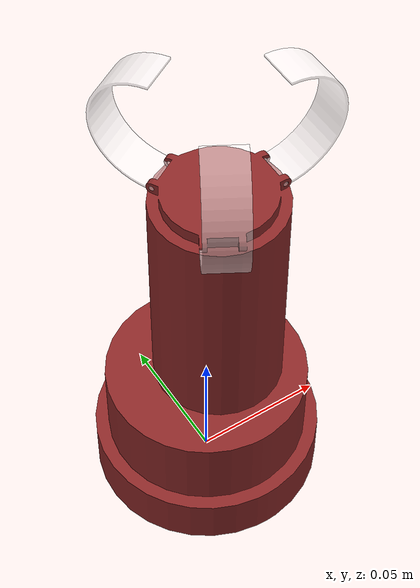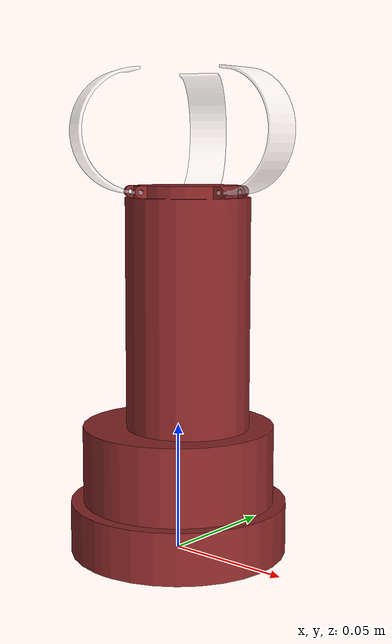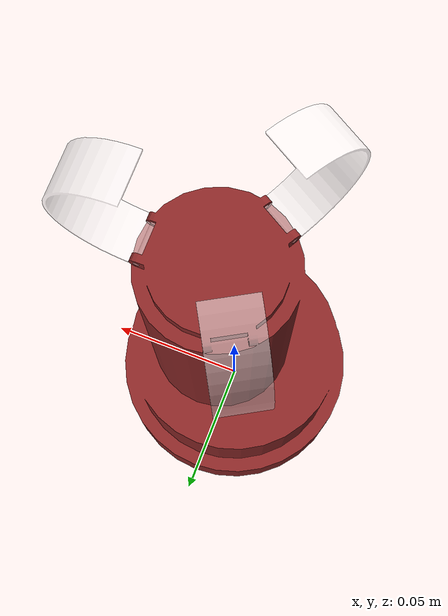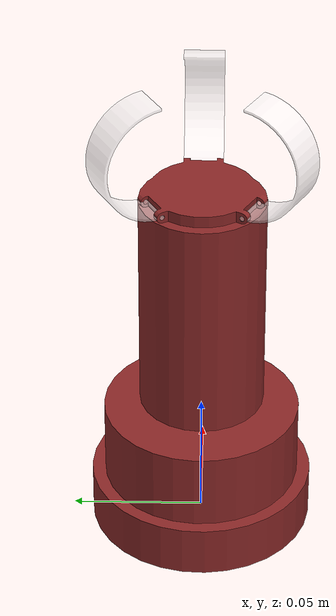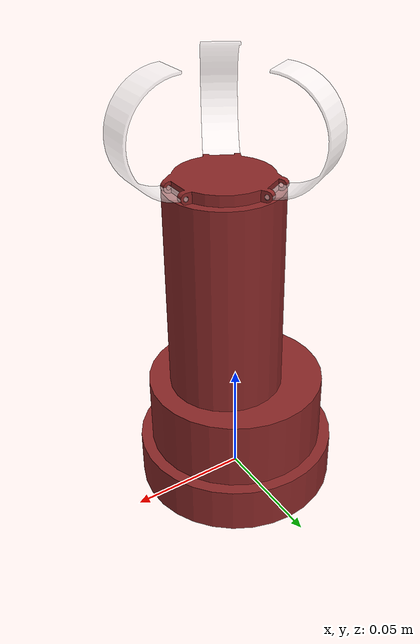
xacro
<?xml version="1.0"?>
<robot xmlns:xacro="http://ros.org/wiki/xacro" name="kirigami_gripper">
  <xacro:include filename="$(find lite6)/urdf/kirigami_gripper.transmission.xacro" />
  <xacro:include filename="$(find lite6)/urdf/kirigami_gripper_test.gazebo.xacro" />

    <link name="base_link">
    </link>
    <joint name="base_fixed_joint" type="fixed">
        <parent link="base_link"/>
        <child link="kirigami_gripper_base"/>
        <origin xyz="0.000 0.000 0.000" rpy="0 0 0"/>
    </joint>
  <link
    name="kirigami_gripper_base">
    <inertial>
      <origin
        xyz="0.00276 0.0 0.046"
        rpy="0 0 0" />
      <mass
        value="0.295" />
      <inertia
        ixx="0.00081394"
        ixy="5.0000E-08"
        ixz="2.9410E-07"
        iyy="0.00081881"
        iyz="1.1000E-07"
        izz="0.00022262" />
    </inertial>
    <visual>
      <origin
        xyz="0 0 0"
        rpy="0 0 0" />
      <geometry>
        <mesh
          filename="package://lite6/meshes/visual/kirigami_gripper_base.STL" />
      </geometry>
      <material name="Kirigami_Red">
        <color rgba="0.549 0.157 0.157 1.0"/>
      </material>
    </visual>
    <collision>
      <origin
        xyz="0 0 0"
        rpy="0 0 0" />
      <geometry>
        <mesh
          filename="package://lite6/meshes/collision/kirigami_gripper_base_collision.STL" />
      </geometry>
    </collision>
  </link>

<!-- finger_1 -->
  <joint name="finger1_joint" type="revolute">
    <origin
      xyz="0.026 -0.0075 0.141"
      rpy="-1.5708 3.1415 0" />
    <parent
      link="kirigami_gripper_base" />
    <child
      link="finger_1" />
    <axis
      xyz="0 0 1" />
    <limit
      lower="-0.45"
      upper="0.45"
      effort="2.5"
      velocity="1.0"/>
  </joint>
  <xacro:insert_transmission name="finger1_joint" />
  <link
    name="finger_1">
    <inertial>
      <origin
        xyz="-0.014 0.0224 0.0075"
        rpy="0 0 0" />
      <mass
        value="0.001" />
      <inertia
        ixx="1.2000E-07"
        ixy="0.00000"
        ixz="0.00000"
        iyy="3.0000E-08"
        iyz="0.00000"
        izz="1.4000E-07" />
    </inertial>
    <visual>
      <origin
        xyz="0 0 0"
        rpy="0 0 0" />
      <geometry>
        <mesh
          filename="package://lite6/meshes/visual/finger_1.STL" />
      </geometry>
      <material name="PET_White">
        <color rgba="1.0 1.0 1.0 0.5"/>
      </material>
    </visual>
    <collision>
      <origin
        xyz="0 0 0"
        rpy="0 0 0" />
      <geometry>
        <mesh
          filename="package://lite6/meshes/collision/finger_1_collision.STL" />
      </geometry>
    </collision>
  </link>

<!-- finger_2 -->
  <joint name="finger2_joint" type="revolute">
    <origin
      xyz="-0.012 -0.01444 0.141"
      rpy="1.5708 0 1.0472" />
    <parent
      link="kirigami_gripper_base" />
    <child
      link="finger_2" />
    <axis
      xyz="0 0 1" />
    <limit
      lower="-0.45"
      upper="0.45"
      effort="2.5"
      velocity="1.0"/>
    <mimic joint="finger1_joint" multiplier="1"/>
  </joint>
  <xacro:mimic_joint_plugin_gazebo name_prefix="finger2_joint"
    following_joint="finger1_joint" mimic_joint="finger2_joint"
    has_pid="false" multiplier="1.0" max_effort="10.0" />
  <link
    name="finger_2">
    <inertial>
      <origin
        xyz="-0.014 0.0224 0.0075"
        rpy="0 0 0" />
      <mass
        value="0.001" />
      <inertia
        ixx="1.2000E-07"
        ixy="0.00000"
        ixz="0.00000"
        iyy="3.0000E-08"
        iyz="0.00000"
        izz="1.4000E-07" />
    </inertial>
    <visual>
      <origin
        xyz="0 0 0"
        rpy="0 0 0" />
      <geometry>
        <mesh
          filename="package://lite6/meshes/visual/finger_2.STL" />
      </geometry>
      <material name="PET_White">
        <color rgba="1.0 1.0 1.0 0.5"/>
      </material>
    </visual>
    <collision>
      <origin
        xyz="0 0 0"
        rpy="0 0 0" />
      <geometry>
        <mesh
          filename="package://lite6/meshes/collision/finger_2_collision.STL" />
      </geometry>
    </collision>
  </link>

<!-- finger_3 -->
  <joint name="finger3_joint" type="revolute">
    <origin
      xyz="0.001 0.02194 0.141"
      rpy="1.5708 0 -1.0472" />
    <parent
      link="kirigami_gripper_base" />
    <child
      link="finger_3" />
    <axis
      xyz="0 0 1" />
    <limit
      lower="-0.45"
      upper="0.45"
      effort="2.5"
      velocity="1.0"/>
    <mimic joint="finger1_joint" multiplier="1"/>
  </joint>
  <xacro:mimic_joint_plugin_gazebo name_prefix="finger3_joint"
    following_joint="finger1_joint" mimic_joint="finger3_joint"
    has_pid="false" multiplier="1.0" max_effort="10.0" />
  <link
    name="finger_3">
    <inertial>
      <origin
        xyz="-0.014 0.0224 0.0075"
        rpy="0 0 0" />
      <mass
        value="0.001" />
      <inertia
        ixx="1.2000E-07"
        ixy="0.00000"
        ixz="0.00000"
        iyy="3.0000E-08"
        iyz="0.00000"
        izz="1.4000E-07" />
    </inertial>
    <visual>
      <origin
        xyz="0 0 0"
        rpy="0 0 0" />
      <geometry>
        <mesh
          filename="package://lite6/meshes/visual/finger_3.STL" />
      </geometry>
      <material name="PET_White">
        <color rgba="1.0 1.0 1.0 0.5"/>
      </material>
    </visual>
    <collision>
      <origin
        xyz="0 0 0"
        rpy="0 0 0" />
      <geometry>
        <mesh
          filename="package://lite6/meshes/collision/finger_3_collision.STL" />
      </geometry>
    </collision>
  </link>

</robot>
